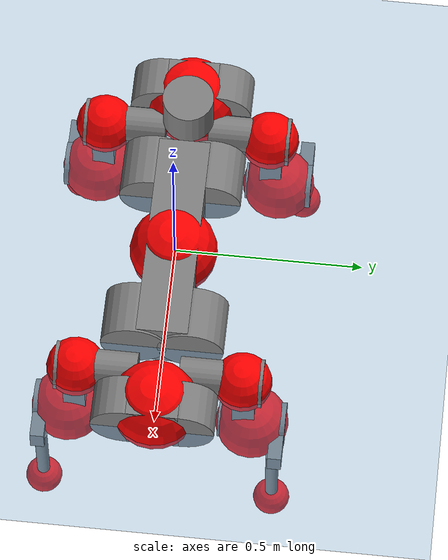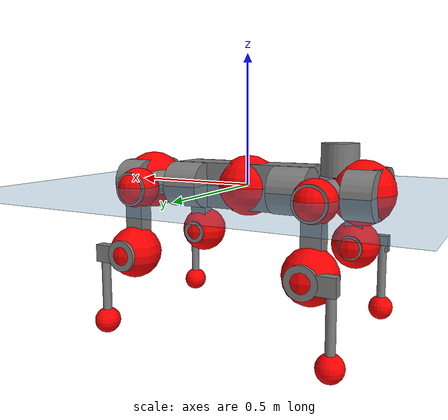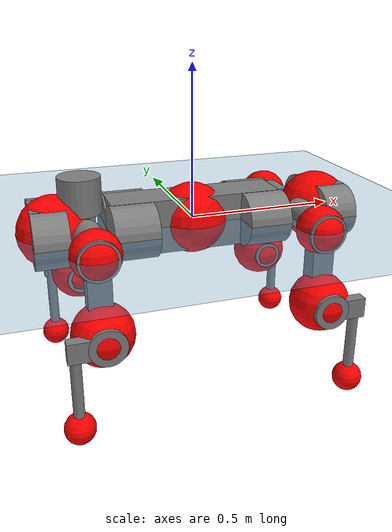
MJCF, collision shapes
<mujoco model="anymal_c">
  <compiler angle="radian" assetdir="assets" balanceinertia="true" inertiafromgeom="false"/>

  <option timestep="0.005" density="1.2" viscosity="2e-05"/>

  <size nkey="1"/>

  <visual>
    <quality shadowsize="8192"/>
    <map shadowclip="0.5"/>
  </visual>

  <default>
    <default class="/">
      <material specular="0" shininess="0.25"/>
      <geom contype="0" conaffinity="0" group="1" solref="-1000 -80"/>
      <site size="0.01 0.005 0.005" group="5"/>
      <general forcelimited="true" forcerange="-80 80" biastype="affine" gainprm="80" biasprm="0 -80 -2"/>
      <default class="anymal_c">
        <joint armature="0.01" damping="0.01" frictionloss="0.1"/>
        <default class="visual">
          <geom type="mesh" group="2"/>
          <default class="visual_zflip"/>
        </default>
        <default class="collision">
          <geom type="cylinder" group="3"/>
          <default class="foot">
            <geom size="0.03 0 0" type="sphere" condim="6" priority="1" friction="0.8 0.02 0.01" solimp="0.015 1 0.03"/>
          </default>
        </default>
      </default>
      <default class="reward_collision_sphere">
        <geom group="5" rgba="1 0 0 1"/>
      </default>
    </default>
  </default>

  <asset>
    <texture type="skybox" colorspace="auto" name="//unnamed_texture_0" builtin="gradient" rgb1="0.95 0.95 0.95" rgb2="0.95 0.95 0.95" width="100" height="600"/>
    <texture type="2d" colorspace="auto" name="texplane" builtin="checker" rgb1="0.345 0.575 0.748" rgb2="0.345 0.575 0.748" markrgb="1 1 1" width="512" height="512"/>
    <texture type="2d" colorspace="linear" name="base" file="base.png"/>
    <texture type="2d" colorspace="linear" name="top_shell" file="top_shell.png"/>
    <texture type="2d" colorspace="linear" name="bottom_shell" file="bottom_shell.png"/>
    <texture type="2d" colorspace="linear" name="remote" file="remote.png"/>
    <texture type="2d" colorspace="linear" name="hatch" file="hatch.png"/>
    <texture type="2d" colorspace="linear" name="handle" file="handle.png"/>
    <texture type="2d" colorspace="linear" name="face" file="face.png"/>
    <texture type="2d" colorspace="linear" name="battery" file="battery.png"/>
    <texture type="2d" colorspace="linear" name="lidar_cage" file="lidar_cage.png"/>
    <texture type="2d" colorspace="linear" name="depth_camera" file="depth_camera.png"/>
    <texture type="2d" colorspace="linear" name="wide_angle_camera" file="wide_angle_camera.png"/>
    <texture type="2d" colorspace="linear" name="lidar" file="lidar.png"/>
    <texture type="2d" colorspace="linear" name="drive" file="drive.png"/>
    <texture type="2d" colorspace="linear" name="hip_l" file="hip_l.png"/>
    <texture type="2d" colorspace="linear" name="shank_l" file="shank_l.png"/>
    <texture type="2d" colorspace="linear" name="foot" file="foot.png"/>
    <texture type="2d" colorspace="linear" name="thigh" file="thigh.png"/>
    <texture type="2d" colorspace="linear" name="shank_r" file="shank_r.png"/>
    <texture type="2d" colorspace="linear" name="hip_r" file="hip_r.png"/>
    <material name="MatPlane" class="/" texture="texplane" texuniform="true" texrepeat="2 2" specular="0.9" shininess="0.5"/>
    <material name="black_plastic" class="/" rgba="0.007 0.007 0.007 1"/>
    <material name="green" class="/" rgba="0.052 0.178 0.033 1"/>
    <material name="red" class="/" rgba="0.178 0.006 0.005 1"/>
    <material name="yellow" class="/" rgba="0.178 0.119 0.006 1"/>
    <material name="lwl" class="/" rgba="0.8 0.8 0.8 1"/>
    <material name="base" class="/" texture="base"/>
    <material name="top_shell" class="/" texture="top_shell"/>
    <material name="bottom_shell" class="/" texture="bottom_shell"/>
    <material name="hip_l" class="/" texture="hip_l"/>
    <material name="thigh" class="/" texture="thigh"/>
    <material name="shank_l" class="/" texture="shank_l"/>
    <material name="foot" class="/" texture="foot"/>
    <material name="hip_r" class="/" texture="hip_r"/>
    <material name="shank" class="/" texture="shank_r"/>
    <material name="hatch" class="/" texture="hatch"/>
    <material name="remote" class="/" texture="remote"/>
    <material name="handle" class="/" texture="handle"/>
    <material name="face" class="/" texture="face"/>
    <material name="depth_camera" class="/" texture="depth_camera"/>
    <material name="wide_angle_camera" class="/" texture="wide_angle_camera"/>
    <material name="battery" class="/" texture="battery"/>
    <material name="lidar_cage" class="/" texture="lidar_cage"/>
    <material name="lidar" class="/" texture="lidar"/>
    <material name="drive" class="/" texture="drive"/>
    <mesh name="base_0" class="/" file="base_0.obj"/>
    <mesh name="base_1" class="/" file="base_1.obj"/>
    <mesh name="base_2" class="/" file="base_2.obj"/>
    <mesh name="base_3" class="/" file="base_3.obj"/>
    <mesh name="base_4" class="/" file="base_4.obj"/>
    <mesh name="base_5" class="/" file="base_5.obj"/>
    <mesh name="top_shell" class="/" file="top_shell.obj"/>
    <mesh name="bottom_shell" class="/" file="bottom_shell.obj"/>
    <mesh name="remote" class="/" file="remote.obj"/>
    <mesh name="handle" class="/" file="handle.obj"/>
    <mesh name="face" class="/" file="face.obj"/>
    <mesh name="wide_angle_camera" class="/" file="wide_angle_camera.obj"/>
    <mesh name="depth_camera" class="/" file="depth_camera.obj"/>
    <mesh name="battery" class="/" file="battery.obj"/>
    <mesh name="lidar_cage" class="/" file="lidar_cage.obj"/>
    <mesh name="lidar" class="/" file="lidar.obj"/>
    <mesh name="drive" class="/" file="drive.obj"/>
    <mesh name="hip_l" class="/" file="hip_l.obj"/>
    <mesh name="thigh" class="/" file="thigh.obj"/>
    <mesh name="shank_l" class="/" file="shank_l.obj"/>
    <mesh name="foot" class="/" file="foot.obj"/>
    <mesh name="hip_r" class="/" file="hip_r.obj"/>
    <mesh name="hatch" class="/" file="hatch.obj"/>
    <mesh name="shank_r" class="/" file="shank_r.obj"/>
  </asset>

  <worldbody>
    <geom name="floor" class="/" size="100 100 0.125" type="plane" group="0" material="MatPlane"/>
    <light name="toplight_shadow" class="/" pos="0 0 5" dir="0.0990148 0.0990148 -0.990148" type="directional" ambient="0.04 0.04 0.04" diffuse="0.55 0.55 0.55" specular="0.12 0.12 0.12"/>
    <light name="toplight_fill" class="/" pos="0 0 5" dir="0.0990148 0.0990148 -0.990148" type="directional" castshadow="false" ambient="0.04 0.04 0.04" diffuse="0.3 0.3 0.3" specular="0.08 0.08 0.08"/>
    <body name="trunk" childclass="anymal_c" pos="-0.00219155 -0.00276531 -0.00106382" quat="0.999999 0.000492214 0.00023998 -0.0012916">
      <inertial pos="0.00061331 0.0011733 0.0430343" quat="0.496265 0.501385 0.499266 0.503058" mass="17.9863" diaginertia="0.671871 0.881357 0.102033"/>
      <joint name="//unnamed_joint_0" type="free" armature="0" damping="0" frictionloss="0"/>
      <geom name="//unnamed_geom_1" class="visual" material="green" mesh="base_0"/>
      <geom name="//unnamed_geom_2" class="visual" material="yellow" mesh="base_1"/>
      <geom name="//unnamed_geom_3" class="visual" material="red" mesh="base_2"/>
      <geom name="//unnamed_geom_4" class="visual" material="black_plastic" mesh="base_3"/>
      <geom name="//unnamed_geom_5" class="visual" material="lwl" mesh="base_4"/>
      <geom name="//unnamed_geom_6" class="visual" material="base" mesh="base_5"/>
      <geom name="trunk_1" class="collision" size="0.284 0.0685517 0.0881379" type="box"/>
      <geom name="trunk_2" class="collision" size="0.0881379 0.071" pos="0.219669 0.0751665 0" quat="0.707107 0 0.707107 0"/>
      <geom name="trunk_3" class="collision" size="0.0881379 0.071" pos="-0.219669 0.0751665 0" quat="0.707107 0 0.707107 0"/>
      <geom name="trunk_4" class="collision" size="0.0881379 0.071" pos="0.219669 -0.0751665 0" quat="0.707107 0 0.707107 0"/>
      <geom name="trunk_5" class="collision" size="0.0881379 0.071" pos="-0.219669 -0.0751665 0" quat="0.707107 0 0.707107 0"/>
      <geom name="//unnamed_geom_12" class="visual" material="top_shell" mesh="top_shell"/>
      <geom name="//unnamed_geom_13" class="visual" material="bottom_shell" mesh="bottom_shell"/>
      <geom name="//unnamed_geom_14" class="visual" material="remote" mesh="remote"/>
      <geom name="//unnamed_geom_15" class="visual" material="handle" mesh="handle"/>
      <geom name="//unnamed_geom_16" class="visual" pos="0.418633 0 0" quat="1 0 0 0" material="face" mesh="face"/>
      <geom name="trunk_6" class="collision" size="0.0538621 0.0685517 0.0881379" pos="0.474182 0 0" type="box"/>
      <geom name="//unnamed_geom_18" class="collision" size="0.0881379 0.0538621" pos="0.474182 0.0751665 0" quat="0.707107 0 0.707107 0"/>
      <geom name="//unnamed_geom_19" class="collision" size="0.0881379 0.0538621" pos="0.474182 -0.0751665 0" quat="0.707107 0 0.707107 0"/>
      <geom name="//unnamed_geom_20" class="visual" pos="0.466247 0 -0.023757" quat="0.965926 0 0.258819 0" material="depth_camera" mesh="depth_camera"/>
      <geom name="//unnamed_geom_21" class="visual" pos="0.518115 0 0.0127867" material="wide_angle_camera" mesh="wide_angle_camera"/>
      <geom name="//unnamed_geom_22" class="visual_zflip" pos="-0.418633 0 0" quat="0 0 0 1" material="face" mesh="face"/>
      <geom name="trunk_7" class="collision" size="0.0538621 0.0685517 0.0881379" pos="-0.474182 0 0" quat="0 0 0 1" type="box"/>
      <geom name="//unnamed_geom_24" class="collision" size="0.0881379 0.0538621" pos="-0.474182 -0.0751665 0" quat="0 -0.707107 0 0.707107"/>
      <geom name="//unnamed_geom_25" class="collision" size="0.0881379 0.0538621" pos="-0.474182 0.0751665 0" quat="0 -0.707107 0 0.707107"/>
      <geom name="//unnamed_geom_26" class="visual" pos="-0.466247 0 -0.023757" quat="0 -0.258819 0 0.965926" material="depth_camera" mesh="depth_camera"/>
      <geom name="//unnamed_geom_27" class="visual_zflip" pos="-0.518115 0 0.0127867" quat="0 0 0 1" material="wide_angle_camera" mesh="wide_angle_camera"/>
      <geom name="//unnamed_geom_28" class="visual" material="battery" mesh="battery"/>
      <geom name="//unnamed_geom_29" class="visual" pos="0 0.0829345 0.0259974" quat="0.683013 -0.183013 0.183013 0.683013" material="depth_camera" mesh="depth_camera"/>
      <geom name="//unnamed_geom_30" class="visual" pos="0 -0.0829345 0.0259974" quat="0.683013 0.183013 0.183013 -0.683013" material="depth_camera" mesh="depth_camera"/>
      <geom name="//unnamed_geom_31" class="visual" pos="-0.36763 0 0.0627802" quat="1 0 0 0" material="lidar_cage" mesh="lidar_cage"/>
      <geom name="trunk_8" class="collision" size="0.0685517 0.0587586" pos="-0.36763 0 0.114029"/>
      <geom name="//unnamed_geom_33" class="visual" pos="-0.36763 2.50794e-05 0.121461" quat="0.707107 0 0 -0.707107" material="lidar" mesh="lidar"/>
      <geom name="//unnamed_geom_34" class="visual" pos="0.30289 0.111598 3.78907e-09" quat="0.258819 0.965926 0 0" material="drive" mesh="drive"/>
      <geom name="//unnamed_geom_35" class="visual" pos="0.30289 -0.111598 -3.78907e-09" quat="0.258819 -0.965926 0 0" material="drive" mesh="drive"/>
      <geom name="//unnamed_geom_36" class="visual" pos="-0.30289 0.111598 -3.78907e-09" quat="0 0 0.965926 -0.258819" material="drive" mesh="drive"/>
      <geom name="//unnamed_geom_37" class="visual" pos="-0.30289 -0.111598 3.78907e-09" quat="0 0 -0.965926 -0.258819" material="drive" mesh="drive"/>
      <geom name="//unnamed_geom_38" class="visual" pos="0.117157 0 0.0623531" quat="1 0 0 0" material="hatch" mesh="hatch"/>
      <geom name="//unnamed_geom_39" class="reward_collision_sphere" size="0.117517"/>
      <geom name="//unnamed_geom_40" class="reward_collision_sphere" size="0.117517" pos="0.454487 0 0"/>
      <geom name="//unnamed_geom_41" class="reward_collision_sphere" size="0.117517" pos="-0.454487 0 0"/>
      <site name="imu" pos="0.252381 0.0129888 0.0400278" size="0.00979311"/>
      <camera name="track" pos="0 -2.14761 0" quat="0.707107 0.707107 0 0" mode="trackcom"/>
      <camera name="ego_camera" pos="0.454487 0 -0.0341661" quat="-0.5 -0.5 0.5 0.5"/>
      <body name="LF_HIP" pos="0.30147 0.1098 0.00188126" quat="0.258541 0.966 0.000578456 -0.000697168">
        <inertial pos="0.055424 -0.018106 -0.00902519" quat="-0.128084 0.710965 -0.134438 0.67827" mass="2.73469" diaginertia="0.00644065 0.00703795 0.00158835"/>
        <joint name="LF_HAA" pos="0 0 0" axis="0.999998 0.00139842 0.00130446" range="-0.708503 0.436257" armature="0.0111942" damping="0" frictionloss="0.104379"/>
        <geom name="//unnamed_geom_42" class="visual" pos="0 0.000222894 -3.66101e-05" quat="0.258819 -0.965926 0 0" material="hip_l" mesh="hip_l"/>
        <geom name="//unnamed_geom_43" class="visual" pos="0.0604973 -0.0740678 -0.0411384" quat="0.183013 -0.683013 0.683013 0.183013" material="drive" mesh="drive"/>
        <geom name="//unnamed_geom_44" class="collision" size="0.0489655 0.0685517" pos="0.0604973 -0.0128425 -0.00589792" quat="-0.353553 -0.612372 0.612372 -0.353553"/>
        <body name="LF_THIGH" pos="0.0609146 -0.0795917 -0.0351269" quat="0.183038 -0.682873 0.683173 0.182911">
          <inertial pos="0.0334245 -7.67863e-05 -0.20721" quat="0.993076 -0.00452065 -0.083325 0.0826828" mass="2.90733" diaginertia="0.0322763 0.0427781 0.00188683"/>
          <joint name="LF_HFE" pos="0 0 0" axis="0.999957 -0.00927946 -4.38356e-06" stiffness="0.00693613" range="-3.19904 3.19478" armature="0.0112302" damping="0" frictionloss="0.107267"/>
          <geom name="//unnamed_geom_45" class="visual" pos="-0.00127008 -2.00135e-06 0" quat="0.707107 0 0 -0.707107" material="thigh" mesh="thigh"/>
          <geom name="//unnamed_geom_46" class="collision" size="0.0636552 0.0391724" pos="0.0403989 0 0" quat="0.5 0.5 -0.5 -0.5"/>
          <geom name="//unnamed_geom_47" class="collision" size="0.0367241 0.0293793 0.13839" pos="0.0302991 0 -0.120704" quat="0.707107 0 0 -0.707107" type="box"/>
          <geom name="//unnamed_geom_48" class="visual" pos="0.1013 0 -0.243434" quat="1 0 0 0" material="drive" mesh="drive"/>
          <geom name="//unnamed_geom_49" class="collision" size="0.0489655 0.0685517" pos="0.0306021 0 -0.243434" quat="0.707107 0 0.707107 0"/>
          <geom name="//unnamed_geom_50" class="reward_collision_sphere" size="0.0783448" pos="0.0252493 0 0"/>
          <body name="LF_SHANK" pos="0.101813 -0.00105777 -0.243907" quat="0.999999 1.64352e-05 -0.000976057 -0.00080718">
            <inertial pos="0.00791796 -0.0636496 -0.0717634" quat="0.99345 -0.109548 -0.0114682 -0.0304007" mass="0.551855" diaginertia="0.0106081 0.0134962 0.000491155"/>
            <joint name="LF_KFE" pos="0 0 0" axis="1 0.000838744 0.000111007" range="-3.12396 3.08455" armature="0.00862341" damping="0.00978482" frictionloss="0.10313"/>
            <geom name="//unnamed_geom_51" class="visual" pos="-0.000414146 -0.00220825 0" quat="0.707107 0 0 -0.707107" material="shank_l" mesh="shank_l"/>
            <geom name="LF_kfe_act" class="collision" size="0.0587586 0.0195862" pos="0.0201994 0 0" quat="0.5 0.5 -0.5 -0.5"/>
            <geom name="//unnamed_geom_53" class="collision" size="0.0563094 0.0330517 0.0186069" pos="0.0201994 -0.0617428 0" quat="0.5 0.5 -0.5 -0.5" type="box"/>
            <geom name="//unnamed_geom_54" class="visual" pos="0.0131802 -0.095153 -0.288678" quat="0.382683 0 0 -0.92388" material="foot" mesh="foot"/>
            <geom name="LF_calf" class="collision" size="0.0171379 0.13833" pos="0.0131801 -0.0944414 -0.144339" quat="0.707107 0 0 -0.707107"/>
            <geom name="LF_foot" class="foot" size="0.0332981" pos="0.0131801 -0.0944414 -0.26946" quat="0.707107 0 0 -0.707107"/>
            <geom name="//unnamed_geom_57" class="reward_collision_sphere" size="0.0979311" pos="-0.0504986 0 0"/>
            <geom name="//unnamed_geom_58" class="reward_collision_sphere" size="0.0489655" pos="0.0131801 -0.0944414 -0.26946"/>
            <site name="LF_foot" class="foot" pos="0.0131801 -0.0944414 -0.26946" quat="0.707107 0 0 -0.707107" size="0.00979311"/>
          </body>
        </body>
      </body>
      <body name="RF_HIP" pos="0.30307 -0.109525 0.000813688" quat="0.259265 -0.965806 0.000172629 -0.000327816">
        <inertial pos="0.0601503 0.0170443 -0.00732457" quat="0.134885 0.679047 0.128973 0.709977" mass="2.74424" diaginertia="0.00645119 0.00732462 0.00149745"/>
        <joint name="RF_HAA" pos="0 0 0" axis="0.999999 -0.00154621 0.000305341" range="-0.447394 0.730739" armature="0.00886534" damping="0.0109128" frictionloss="0.108298"/>
        <geom name="//unnamed_geom_59" class="visual" pos="0 -0.000222892 -3.661e-05" quat="0.258819 0.965926 0 0" material="hip_r" mesh="hip_r"/>
        <geom name="//unnamed_geom_60" class="visual" pos="0.0604973 0.0740678 -0.0411384" quat="0.183013 0.683013 0.683013 -0.183013" material="drive" mesh="drive"/>
        <geom name="//unnamed_geom_61" class="collision" size="0.0489655 0.0685517" pos="0.0604973 0.0128425 -0.00589792" quat="-0.353553 0.612372 0.612372 0.353553"/>
        <body name="RF_THIGH" pos="0.0594088 0.0776263 -0.0335233" quat="0.183148 0.683685 0.682511 -0.182235">
          <inertial pos="0.0284136 -0.00203133 -0.209455" quat="0.992743 -0.000505387 -0.0789579 0.0907067" mass="2.79245" diaginertia="0.0316622 0.0414804 0.0018171"/>
          <joint name="RF_HFE" pos="0 0 0" axis="0.999997 0.00241547 -0.00103199" stiffness="0.00766864" range="-3.14705 3.12298" armature="0.00980773" damping="0.0121456" frictionloss="0.104647"/>
          <geom name="//unnamed_geom_62" class="visual" pos="-0.00127008 -2.00135e-06 0" quat="0.707107 0 0 -0.707107" material="thigh" mesh="thigh"/>
          <geom name="//unnamed_geom_63" class="collision" size="0.0636552 0.0391724" pos="0.0403989 0 0" quat="0.5 0.5 0.5 0.5"/>
          <geom name="//unnamed_geom_64" class="collision" size="0.0367241 0.0293793 0.13839" pos="0.0302991 0 -0.120704" quat="0.707107 0 0 0.707107" type="box"/>
          <geom name="//unnamed_geom_65" class="visual" pos="0.1013 0 -0.243434" quat="1 0 0 0" material="drive" mesh="drive"/>
          <geom name="//unnamed_geom_66" class="collision" size="0.0489655 0.0685517" pos="0.0306021 0 -0.243434" quat="0.707107 0 0.707107 0"/>
          <geom name="//unnamed_geom_67" class="reward_collision_sphere" size="0.0783448" pos="0.0252493 0 0"/>
          <body name="RF_SHANK" pos="0.103735 -0.000603172 -0.24247" quat="1 -7.74244e-05 4.14369e-06 0.000108089">
            <inertial pos="0.00790111 0.0661402 -0.0686234" quat="0.993523 0.111305 -0.000865058 0.0228456" mass="0.570714" diaginertia="0.0114292 0.0131711 0.000525422"/>
            <joint name="RF_KFE" pos="0 0 0" axis="0.999905 0.0130071 0.00450727" range="-3.12275 3.15684" armature="0.00953707" damping="0.0195528" frictionloss="0.0963876"/>
            <geom name="//unnamed_geom_68" class="visual" pos="-0.000414143 0.00220824 0" quat="0.707107 0 0 0.707107" material="shank" mesh="shank_r"/>
            <geom name="RF_kfe_act" class="collision" size="0.0587586 0.0195862" pos="0.0201994 0 0" quat="0.5 0.5 0.5 0.5"/>
            <geom name="//unnamed_geom_70" class="collision" size="0.0563094 0.0330517 0.0186069" pos="0.0201994 0.0617428 0" quat="0.5 0.5 0.5 0.5" type="box"/>
            <geom name="//unnamed_geom_71" class="visual" pos="0.01318 0.095153 -0.288678" quat="0.382683 0 0 0.92388" material="foot" mesh="foot"/>
            <geom name="RF_calf" class="collision" size="0.0171379 0.13833" pos="0.0131801 0.0944414 -0.144339" quat="0.707107 0 0 0.707107"/>
            <geom name="RF_foot" class="foot" size="0.0277257" pos="0.0131801 0.0944414 -0.26946" quat="0.707107 0 0 0.707107"/>
            <geom name="//unnamed_geom_74" class="reward_collision_sphere" size="0.0979311" pos="-0.0504986 0 0"/>
            <geom name="//unnamed_geom_75" class="reward_collision_sphere" size="0.0489655" pos="0.0131801 0.0944414 -0.26946"/>
            <site name="RF_foot" class="foot" pos="0.0131801 0.0944414 -0.26946" quat="0.707107 0 0 0.707107" size="0.00979311"/>
          </body>
        </body>
      </body>
      <body name="LH_HIP" pos="-0.301494 0.111118 0.00258813" quat="0.000613764 0.000167922 0.965875 -0.259007">
        <inertial pos="0.0595082 0.0168129 -0.00806406" quat="0.135556 0.679527 0.128136 0.709542" mass="2.58395" diaginertia="0.00612606 0.00724692 0.00149562"/>
        <joint name="LH_HAA" pos="0 0 0" axis="0.999985 -0.0033687 0.00430699" stiffness="0.0053726" range="-0.477077 0.700503" armature="0.00981808" damping="0.00919103" frictionloss="0.102869"/>
        <geom name="//unnamed_geom_76" class="visual" pos="0 -0.000222892 -3.661e-05" quat="-0.258819 -0.965926 0 0" material="hip_r" mesh="hip_r"/>
        <geom name="//unnamed_geom_77" class="visual" pos="0.0604973 0.0740678 -0.0411384" quat="0.183013 0.683013 0.683013 -0.183013" material="drive" mesh="drive"/>
        <geom name="//unnamed_geom_78" class="collision" size="0.0489655 0.0685517" pos="0.0604973 0.0128425 -0.00589792" quat="-0.353553 0.612372 0.612372 0.353553"/>
        <body name="LH_THIGH" pos="0.0576365 0.0797486 -0.0331228" quat="0.182443 0.683046 0.682891 -0.183912">
          <inertial pos="0.0307351 0.000807417 -0.208728" quat="0.992135 -0.0013859 -0.0926041 0.0842091" mass="2.78742" diaginertia="0.0318314 0.0412146 0.00191659"/>
          <joint name="LH_HFE" pos="0 0 0" axis="0.999987 0.0032013 -0.00386728" stiffness="0.000797366" range="-3.12099 3.12828" armature="0.0086019" damping="0" frictionloss="0.0946214"/>
          <geom name="//unnamed_geom_79" class="visual" pos="-0.00127008 -2.00135e-06 0" quat="0.707107 0 0 -0.707107" material="thigh" mesh="thigh"/>
          <geom name="//unnamed_geom_80" class="collision" size="0.0636552 0.0391724" pos="0.0403989 0 0" quat="0.5 0.5 -0.5 -0.5"/>
          <geom name="//unnamed_geom_81" class="collision" size="0.0367241 0.0293793 0.13839" pos="0.0302991 0 -0.120704" quat="0.707107 0 0 -0.707107" type="box"/>
          <geom name="//unnamed_geom_82" class="visual" pos="0.1013 0 -0.243434" quat="1 0 0 0" material="drive" mesh="drive"/>
          <geom name="//unnamed_geom_83" class="collision" size="0.0489655 0.0685517" pos="0.0306021 0 -0.243434" quat="0.707107 0 0.707107 0"/>
          <geom name="//unnamed_geom_84" class="reward_collision_sphere" size="0.0783448" pos="0.0252493 0 0"/>
          <body name="LH_SHANK" pos="0.101868 -0.00134446 -0.242377" quat="1 6.5325e-06 3.71679e-05 1.72416e-05">
            <inertial pos="0.00569812 0.065847 -0.0665127" quat="0.993086 0.114459 -0.0014379 0.0260251" mass="0.552405" diaginertia="0.0107131 0.013266 0.000514328"/>
            <joint name="LH_KFE" pos="0 0 0" axis="0.999999 -0.000734395 -0.000878832" stiffness="0.00317806" range="-3.14145 3.14243" armature="0.00917398" damping="0" frictionloss="0.0965718"/>
            <geom name="//unnamed_geom_85" class="visual" pos="-0.000414143 0.00220824 0" quat="-0.707107 0 0 -0.707107" material="shank" mesh="shank_r"/>
            <geom name="LH_kfe_act" class="collision" size="0.0587586 0.0195862" pos="0.0201994 0 0" quat="0.5 0.5 -0.5 -0.5"/>
            <geom name="//unnamed_geom_87" class="collision" size="0.0563094 0.0330517 0.0186069" pos="0.0201994 0.0617428 0" quat="0.5 0.5 -0.5 -0.5" type="box"/>
            <geom name="//unnamed_geom_88" class="visual" pos="0.01318 0.095153 -0.288678" quat="-0.382683 0 0 -0.92388" material="foot" mesh="foot"/>
            <geom name="LH_calf" class="collision" size="0.0171379 0.13833" pos="0.0131801 0.0944414 -0.144339" quat="0.707107 0 0 -0.707107"/>
            <geom name="LH_foot" class="foot" size="0.0332232" pos="0.0131801 0.0944414 -0.26946" quat="0.707107 0 0 -0.707107"/>
            <geom name="//unnamed_geom_91" class="reward_collision_sphere" size="0.0979311" pos="-0.0504986 0 0"/>
            <geom name="//unnamed_geom_92" class="reward_collision_sphere" size="0.0489655" pos="0.0131801 0.0944414 -0.26946"/>
            <site name="LH_foot" class="foot" pos="0.0131801 0.0944414 -0.26946" quat="0.707107 0 0 -0.707107" size="0.00979311"/>
          </body>
        </body>
      </body>
      <body name="RH_HIP" pos="-0.302319 -0.113616 0.00292235" quat="-0.00115663 0.000350601 -0.965692 -0.259687">
        <inertial pos="0.0572638 -0.0136969 -0.00745185" quat="-0.134575 0.704053 -0.128456 0.685345" mass="2.6045" diaginertia="0.00630255 0.00720908 0.0014667"/>
        <joint name="RH_HAA" pos="0 0 0" axis="0.999985 0.00113191 -0.00529501" stiffness="0.00782699" range="-0.743322 0.504417" armature="0.0110112" damping="0.0169689" frictionloss="0.0848333"/>
        <geom name="//unnamed_geom_93" class="visual" pos="0 0.000222894 -3.66101e-05" quat="-0.258819 0.965926 0 0" material="hip_l" mesh="hip_l"/>
        <geom name="//unnamed_geom_94" class="visual" pos="0.0604973 -0.0740678 -0.0411384" quat="-0.183013 0.683013 -0.683013 -0.183013" material="drive" mesh="drive"/>
        <geom name="//unnamed_geom_95" class="collision" size="0.0489655 0.0685517" pos="0.0604973 -0.0128425 -0.00589792" quat="0.353553 0.612372 -0.612372 0.353553"/>
        <body name="RH_THIGH" pos="0.0592701 -0.0773421 -0.0384266" quat="-0.182459 0.683365 -0.682813 -0.182997">
          <inertial pos="0.0314361 -0.00207293 -0.210157" quat="0.993265 -0.00539785 -0.0806547 0.0830027" mass="2.78692" diaginertia="0.0309242 0.0419979 0.00182171"/>
          <joint name="RH_HFE" pos="0 0 0" axis="1 -0.000430956 -0.000180412" range="-3.19068 3.19489" armature="0.0108424" damping="0.0119049" frictionloss="0.0988833"/>
          <geom name="//unnamed_geom_96" class="visual" pos="-0.00127008 -2.00135e-06 0" quat="0.707107 0 0 -0.707107" material="thigh" mesh="thigh"/>
          <geom name="//unnamed_geom_97" class="collision" size="0.0636552 0.0391724" pos="0.0403989 0 0" quat="0.5 0.5 0.5 0.5"/>
          <geom name="//unnamed_geom_98" class="collision" size="0.0367241 0.0293793 0.13839" pos="0.0302991 0 -0.120704" quat="0.707107 0 0 0.707107" type="box"/>
          <geom name="//unnamed_geom_99" class="visual" pos="0.1013 0 -0.243434" quat="1 0 0 0" material="drive" mesh="drive"/>
          <geom name="//unnamed_geom_100" class="collision" size="0.0489655 0.0685517" pos="0.0306021 0 -0.243434" quat="0.707107 0 0.707107 0"/>
          <geom name="//unnamed_geom_101" class="reward_collision_sphere" size="0.0783448" pos="0.0252493 0 0"/>
          <body name="RH_SHANK" pos="0.0995709 0.0032921 -0.244113" quat="1 -0.000137349 -0.000211345 -0.000227434">
            <inertial pos="0.00720796 -0.0655257 -0.0667435" quat="0.992548 -0.119776 -0.00269125 -0.0222278" mass="0.550752" diaginertia="0.0106952 0.0124005 0.000512486"/>
            <joint name="RH_KFE" pos="0 0 0" axis="0.999999 2.10836e-05 0.00115745" range="-3.07153 3.16793" armature="0.00826483" damping="0.00265006" frictionloss="0.0976495"/>
            <geom name="//unnamed_geom_102" class="visual" pos="-0.000414146 -0.00220825 0" quat="0.707107 0 0 -0.707107" material="shank_l" mesh="shank_l"/>
            <geom name="RH_kfe_act" class="collision" size="0.0587586 0.0195862" pos="0.0201994 0 0" quat="0.5 0.5 0.5 0.5"/>
            <geom name="//unnamed_geom_104" class="collision" size="0.0563094 0.0330517 0.0186069" pos="0.0201994 -0.0617428 0" quat="0.5 0.5 0.5 0.5" type="box"/>
            <geom name="//unnamed_geom_105" class="visual" pos="0.0131802 -0.095153 -0.288678" quat="0.382683 0 0 -0.92388" material="foot" mesh="foot"/>
            <geom name="RH_calf" class="collision" size="0.0171379 0.13833" pos="0.0131801 -0.0944414 -0.144339" quat="0.707107 0 0 0.707107"/>
            <geom name="RH_foot" class="foot" size="0.0276015" pos="0.0131801 -0.0944414 -0.26946" quat="0.707107 0 0 0.707107"/>
            <geom name="//unnamed_geom_108" class="reward_collision_sphere" size="0.0979311" pos="-0.0504986 0 0"/>
            <geom name="//unnamed_geom_109" class="reward_collision_sphere" size="0.0489655" pos="0.0131801 -0.0944414 -0.26946"/>
            <site name="RH_foot" class="foot" pos="0.0131801 -0.0944414 -0.26946" quat="0.707107 0 0 0.707107" size="0.00979311"/>
          </body>
        </body>
      </body>
    </body>
  </worldbody>

  <contact>
    <pair class="/" geom1="floor" geom2="LF_foot" name="//unnamed_contact_0"/>
    <pair class="/" geom1="floor" geom2="RF_foot" name="//unnamed_contact_1"/>
    <pair class="/" geom1="floor" geom2="LH_foot" name="//unnamed_contact_2"/>
    <pair class="/" geom1="floor" geom2="RH_foot" name="//unnamed_contact_3"/>
  </contact>

  <actuator>
    <general name="LF_HAA" class="/" joint="LF_HAA" forcerange="-78.1848 78.1848" gainprm="78.6784" biasprm="0 -78.6784 -1.92797"/>
    <general name="LF_HFE" class="/" joint="LF_HFE" forcerange="-72.802 72.802" gainprm="78.6784" biasprm="0 -78.6784 -1.92797"/>
    <general name="LF_KFE" class="/" joint="LF_KFE" forcerange="-77.3591 77.3591" gainprm="78.6784" biasprm="0 -78.6784 -1.92797"/>
    <general name="RF_HAA" class="/" joint="RF_HAA" forcerange="-83.7809 83.7809" gainprm="78.6784" biasprm="0 -78.6784 -1.92797"/>
    <general name="RF_HFE" class="/" joint="RF_HFE" forcerange="-80.6487 80.6487" gainprm="78.6784" biasprm="0 -78.6784 -1.92797"/>
    <general name="RF_KFE" class="/" joint="RF_KFE" forcerange="-70.193 70.193" gainprm="78.6784" biasprm="0 -78.6784 -1.92797"/>
    <general name="LH_HAA" class="/" joint="LH_HAA" forcerange="-80.6079 80.6079" gainprm="78.6784" biasprm="0 -78.6784 -1.92797"/>
    <general name="LH_HFE" class="/" joint="LH_HFE" forcerange="-80.8142 80.8142" gainprm="78.6784" biasprm="0 -78.6784 -1.92797"/>
    <general name="LH_KFE" class="/" joint="LH_KFE" forcerange="-76.4368 76.4368" gainprm="78.6784" biasprm="0 -78.6784 -1.92797"/>
    <general name="RH_HAA" class="/" joint="RH_HAA" forcerange="-75.3154 75.3154" gainprm="78.6784" biasprm="0 -78.6784 -1.92797"/>
    <general name="RH_HFE" class="/" joint="RH_HFE" forcerange="-78.2108 78.2108" gainprm="78.6784" biasprm="0 -78.6784 -1.92797"/>
    <general name="RH_KFE" class="/" joint="RH_KFE" forcerange="-85.8044 85.8044" gainprm="78.6784" biasprm="0 -78.6784 -1.92797"/>
  </actuator>

  <sensor>
    <gyro site="imu" name="imu_angular_velocity"/>
    <velocimeter site="imu" name="imu_linear_velocity"/>
    <framelinvel objtype="site" objname="LF_foot" name="LF_foot_global_linear_velocity"/>
    <framelinvel objtype="site" objname="RF_foot" name="RF_foot_global_linear_velocity"/>
    <framelinvel objtype="site" objname="LH_foot" name="LH_foot_global_linear_velocity"/>
    <framelinvel objtype="site" objname="RH_foot" name="RH_foot_global_linear_velocity"/>
  </sensor>

  <keyframe>
    <key name="home" qpos="0 0 0.55 1 0 0 0 0 0.4 -0.8 0 -0.4 0.8 0 -0.4 0.8 0 0.4 -0.8"/>
  </keyframe>
</mujoco>
